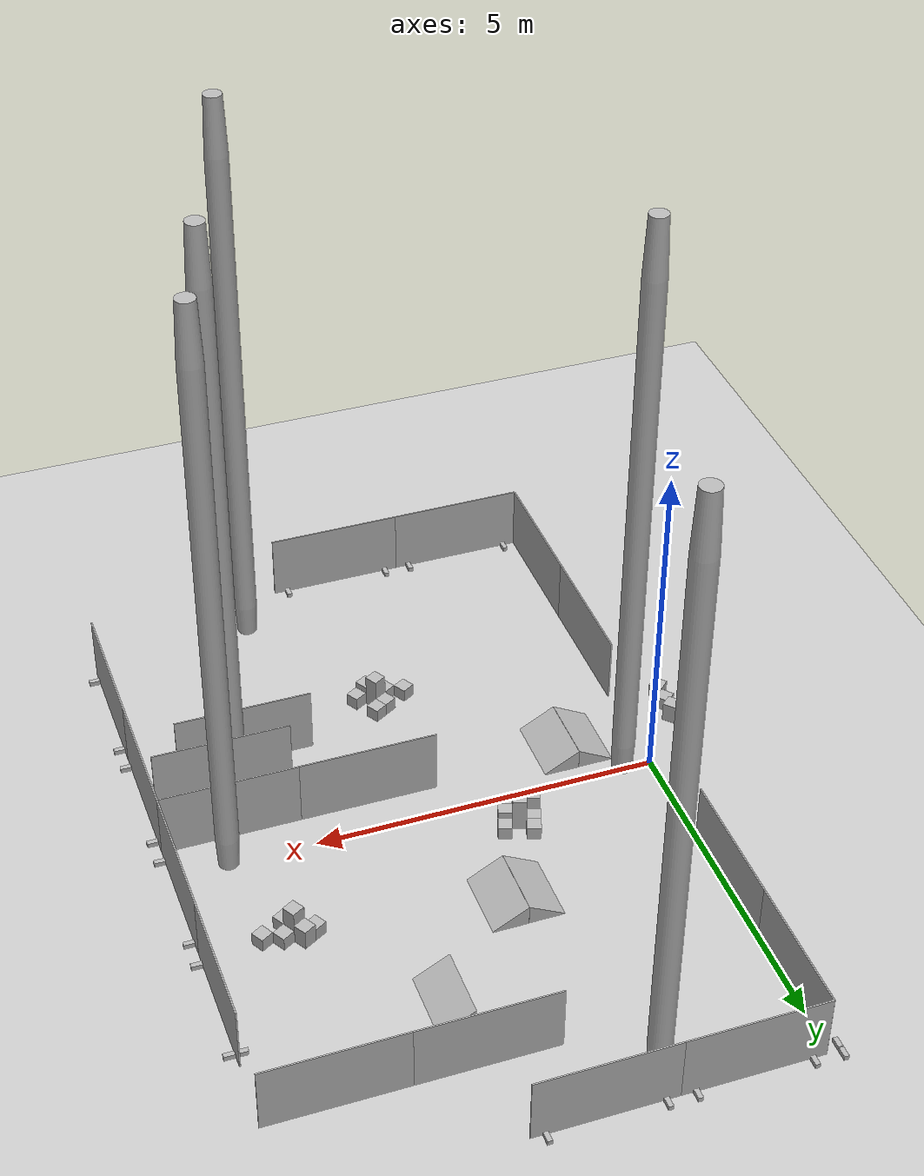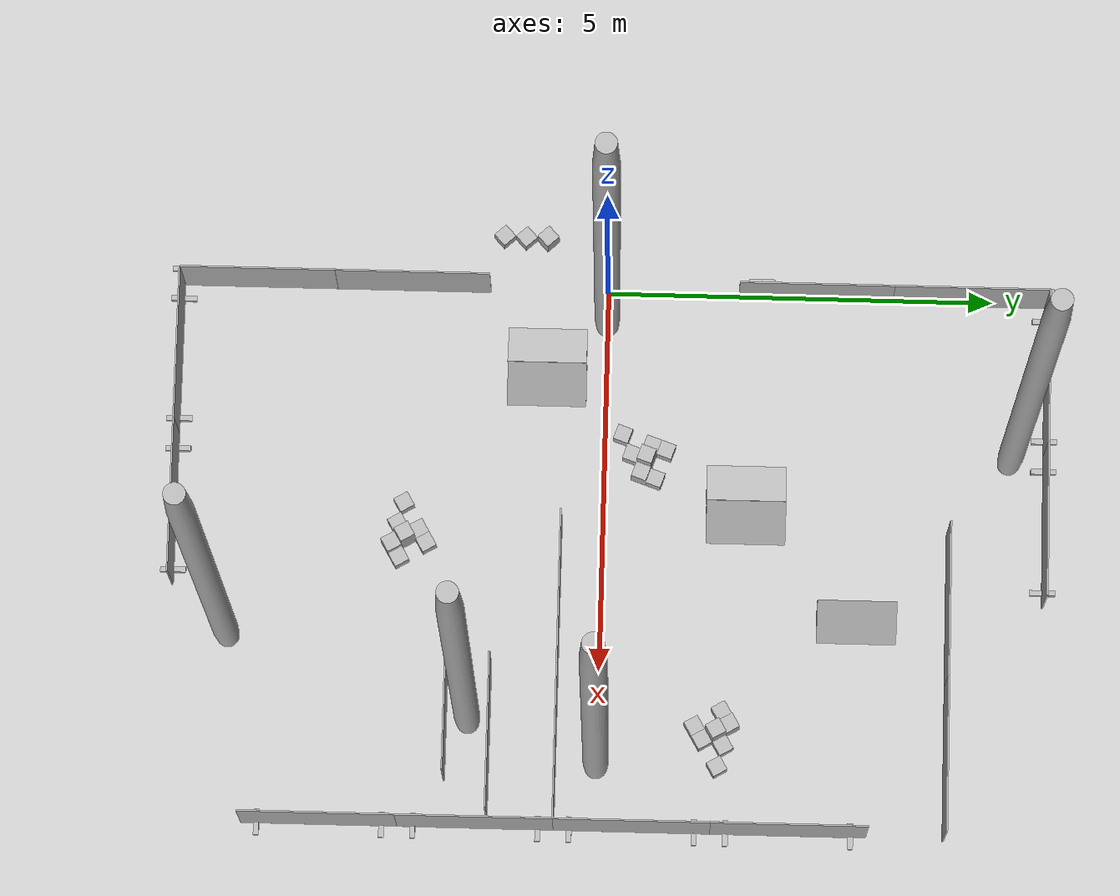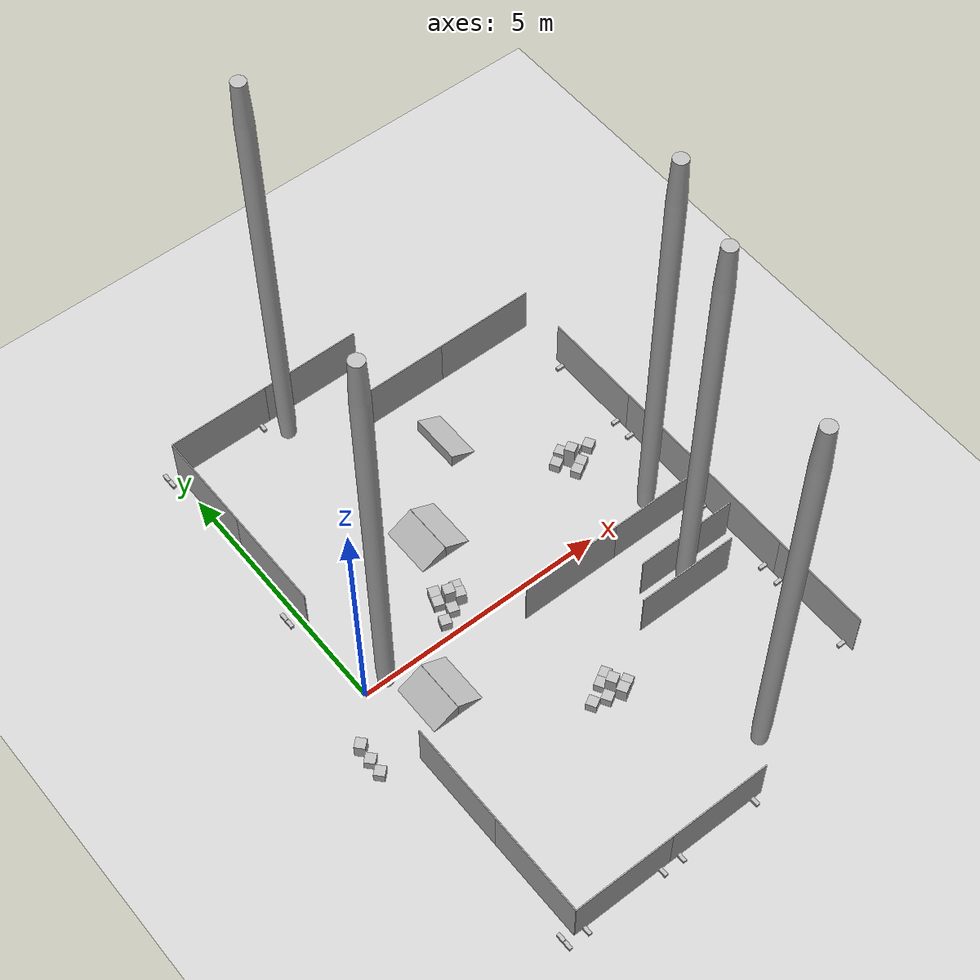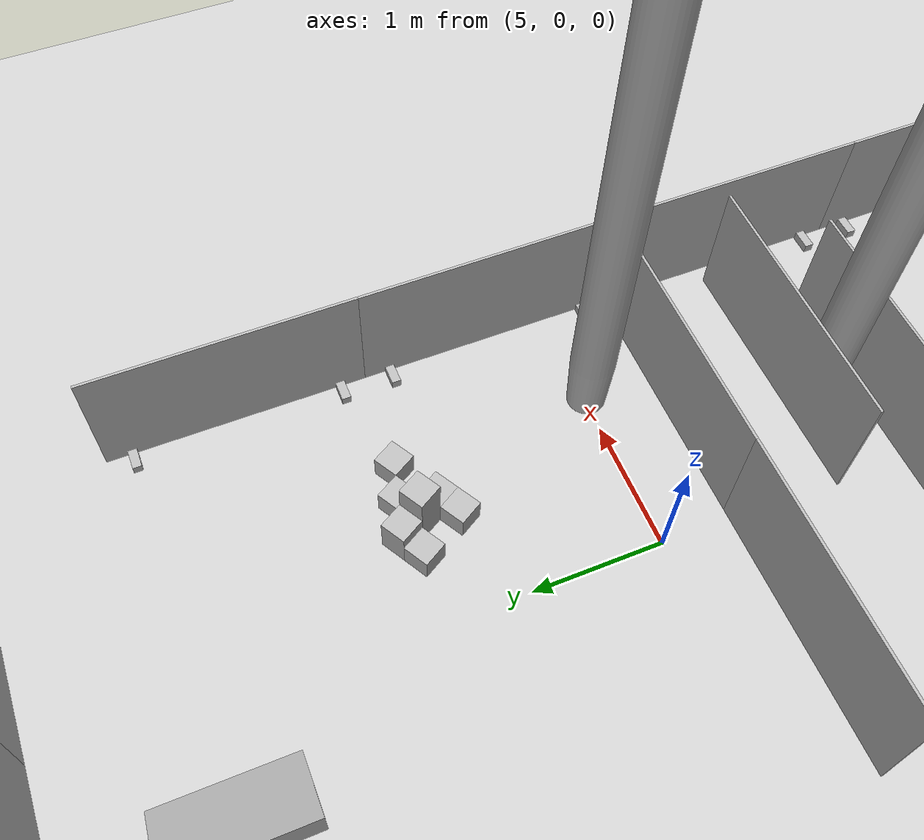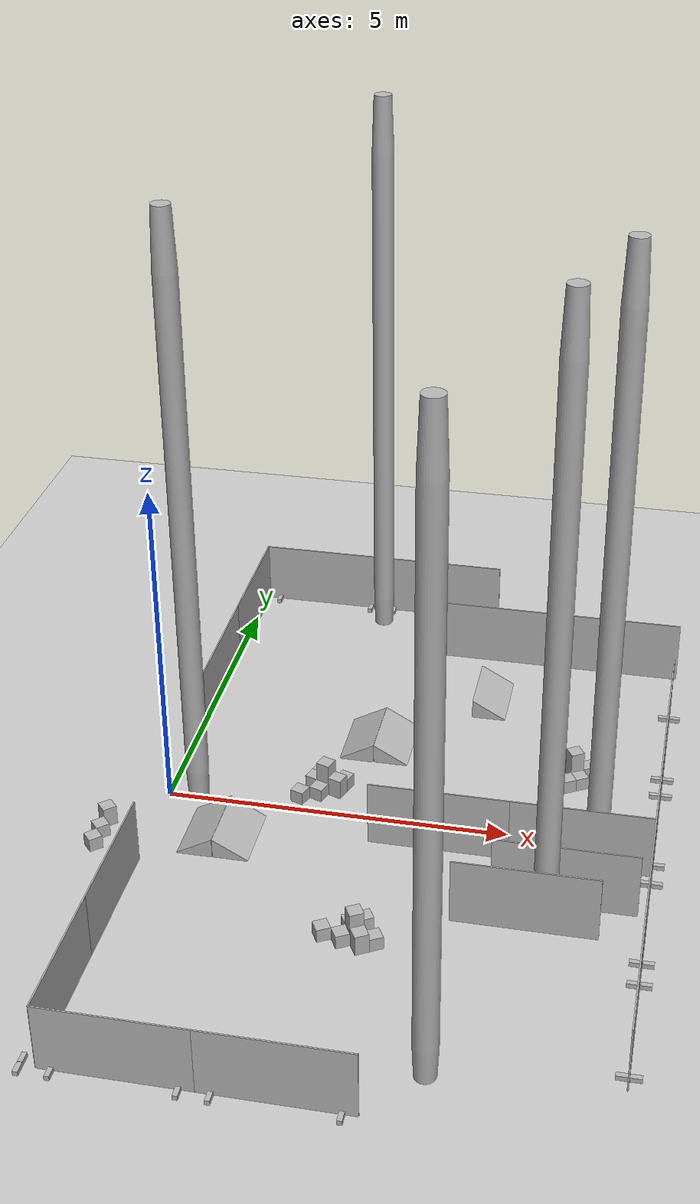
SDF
<sdf version="1.4">
 <world name="arena_HKT_11">
  <include><uri>model://ground_plane</uri></include>
  <include>
   <name>wall_stand.1071</name>
   <pose>-0.19949999451637268 2.0 0.03449999913573265  0.0 -0.0 1.570796251296997</pose>
   <uri>model://wall_stand</uri>
  </include>
  <include>
   <name>wall_stand.1072</name>
   <pose>-0.19949999451637268 2.0 0.03449999913573265  0.0 -0.0 1.570796251296997</pose>
   <uri>model://wall_stand</uri>
  </include>
  <include>
   <name>ramp.098</name>
   <pose>3.025479316711426 1.8507144451141357 0.15000000596046448  0.0 0.0 0.0</pose>
   <uri>model://ramp</uri>
  </include>
  <include>
   <name>ramp.099</name>
   <pose>2.5125322341918945 1.8457143306732178 0.15000000596046448  0.0 -0.0 3.141592502593994</pose>
   <uri>model://ramp</uri>
  </include>
  <include>
   <name>wall_2x1.488</name>
   <pose>7.071430206298828 -3.531057596206665 0.5130000114440918  0.0 -0.0 4.71238899230957</pose>
   <uri>model://wall_2x1</uri>
  </include>
  <include>
   <name>wall_2x1.489</name>
   <pose>4.071430206298828 -0.5310573577880859 0.5130000114440918  0.0 -0.0 3.141592502593994</pose>
   <uri>model://wall_2x1</uri>
  </include>
  <include>
   <name>wall_stand.1082</name>
   <pose>-0.19949999451637268 2.0 0.03449999913573265  0.0 -0.0 1.570796251296997</pose>
   <uri>model://wall_stand</uri>
  </include>
  <include>
   <name>wall_2x1.490</name>
   <pose>7.071430206298828 -1.531057596206665 0.5130000114440918  0.0 -0.0 4.71238899230957</pose>
   <uri>model://wall_2x1</uri>
  </include>
  <include>
   <name>wall_2x1.491</name>
   <pose>7.071430206298828 2.468942403793335 0.5130000114440918  0.0 -0.0 4.71238899230957</pose>
   <uri>model://wall_2x1</uri>
  </include>
  <include>
   <name>wall_2x1.492</name>
   <pose>7.071430206298828 0.46894240379333496 0.5130000114440918  0.0 -0.0 4.71238899230957</pose>
   <uri>model://wall_2x1</uri>
  </include>
  <include>
   <name>wall_2x1.493</name>
   <pose>6.071430206298828 -0.5310574769973755 0.5130000114440918  0.0 -0.0 3.141592502593994</pose>
   <uri>model://wall_2x1</uri>
  </include>
  <include>
   <name>wall_stand.1083</name>
   <pose>-0.19949999451637268 2.0 0.03449999913573265  0.0 -0.0 1.570796251296997</pose>
   <uri>model://wall_stand</uri>
  </include>
  <include>
   <name>wall_stand.1084</name>
   <pose>7.071430206298828 -4.331557273864746 0.03450000286102295  0.0 -0.0 3.141592502593994</pose>
   <uri>model://wall_stand</uri>
  </include>
  <include>
   <name>wall_stand.1085</name>
   <pose>7.071430206298828 -2.730557680130005 0.03450000286102295  0.0 -0.0 3.141592502593994</pose>
   <uri>model://wall_stand</uri>
  </include>
  <include>
   <name>wall_stand.1086</name>
   <pose>7.071430206298828 -2.3315577507019043 0.03450000286102295  0.0 -0.0 3.141592502593994</pose>
   <uri>model://wall_stand</uri>
  </include>
  <include>
   <name>wall_stand.1087</name>
   <pose>7.071430206298828 -0.7305576801300049 0.03450000286102295  0.0 -0.0 3.141592502593994</pose>
   <uri>model://wall_stand</uri>
  </include>
  <include>
   <name>wall_stand.1088</name>
   <pose>7.071430206298828 3.269442319869995 0.03450000286102295  0.0 -0.0 3.141592502593994</pose>
   <uri>model://wall_stand</uri>
  </include>
  <include>
   <name>wall_stand.1089</name>
   <pose>7.071430206298828 1.6684424877166748 0.03450000286102295  0.0 -0.0 3.141592502593994</pose>
   <uri>model://wall_stand</uri>
  </include>
  <include>
   <name>wall_stand.1090</name>
   <pose>7.071430206298828 -0.3315577507019043 0.03450000286102295  0.0 -0.0 3.141592502593994</pose>
   <uri>model://wall_stand</uri>
  </include>
  <include>
   <name>wall_stand.1091</name>
   <pose>7.071430206298828 1.2694423198699951 0.03450000286102295  0.0 -0.0 3.141592502593994</pose>
   <uri>model://wall_stand</uri>
  </include>
  <include>
   <name>wall_2x1.495</name>
   <pose>0.010646045207977295 -2.5302858352661133 0.5130000114440918  0.0 -0.0 1.570796251296997</pose>
   <uri>model://wall_2x1</uri>
  </include>
  <include>
   <name>wall_stand.1093</name>
   <pose>-0.19949999451637268 2.0 0.03449999913573265  0.0 -0.0 1.570796251296997</pose>
   <uri>model://wall_stand</uri>
  </include>
  <include>
   <name>wall_2x1.497</name>
   <pose>3.010645627975464 -5.530285835266113 0.5130000114440918  0.0 -0.0 3.141592502593994</pose>
   <uri>model://wall_2x1</uri>
  </include>
  <include>
   <name>wall_2x1.498</name>
   <pose>1.010645866394043 -5.530285835266113 0.5130000114440918  0.0 -0.0 3.141592502593994</pose>
   <uri>model://wall_2x1</uri>
  </include>
  <include>
   <name>wall_2x1.499</name>
   <pose>0.010645806789398193 -4.530285835266113 0.5130000114440918  0.0 -0.0 1.570796251296997</pose>
   <uri>model://wall_2x1</uri>
  </include>
  <include>
   <name>wall_stand.1094</name>
   <pose>-0.19949999451637268 2.0 0.03449999913573265  0.0 -0.0 1.570796251296997</pose>
   <uri>model://wall_stand</uri>
  </include>
  <include>
   <name>wall_stand.1098</name>
   <pose>-0.18885427713394165 -5.530285835266113 0.03450000286102295  0.0 -0.0 1.570796251296997</pose>
   <uri>model://wall_stand</uri>
  </include>
  <include>
   <name>wall_stand.1099</name>
   <pose>3.811145544052124 -5.530285835266113 0.03450000286102295  0.0 -0.0 1.570796251296997</pose>
   <uri>model://wall_stand</uri>
  </include>
  <include>
   <name>wall_stand.1100</name>
   <pose>2.210145950317383 -5.530285835266113 0.03450000286102295  0.0 -0.0 1.570796251296997</pose>
   <uri>model://wall_stand</uri>
  </include>
  <include>
   <name>wall_stand.1101</name>
   <pose>0.21014565229415894 -5.530285835266113 0.03450000286102295  0.0 -0.0 1.570796251296997</pose>
   <uri>model://wall_stand</uri>
  </include>
  <include>
   <name>wall_stand.1102</name>
   <pose>1.8111457824707031 -5.530285835266113 0.03450000286102295  0.0 -0.0 1.570796251296997</pose>
   <uri>model://wall_stand</uri>
  </include>
  <include>
   <name>cube_20x20.1265</name>
   <pose>2.0343916416168213 0.613365888595581 0.10000000149011612  0.0 0.0 4.376082897186279</pose>
   <uri>model://cube_20x20</uri>
  </include>
  <include>
   <name>cube_20x20.1266</name>
   <pose>2.1571874618530273 0.358569860458374 0.10000000149011612  0.0 0.0 4.376082897186279</pose>
   <uri>model://cube_20x20</uri>
  </include>
  <include>
   <name>cube_20x20.1267</name>
   <pose>1.902390956878662 0.23577475547790527 0.10000000149011612  0.0 0.0 4.376082897186279</pose>
   <uri>model://cube_20x20</uri>
  </include>
  <include>
   <name>cube_20x20.1268</name>
   <pose>2.1003925800323486 0.8021619319915771 0.10000000149011612  0.0 0.0 4.376082897186279</pose>
   <uri>model://cube_20x20</uri>
  </include>
  <include>
   <name>cube_20x20.1269</name>
   <pose>2.4779841899871826 0.6701610088348389 0.10000000149011612  0.0 0.0 4.376082897186279</pose>
   <uri>model://cube_20x20</uri>
  </include>
  <include>
   <name>cube_20x20.1270</name>
   <pose>2.0343916416168213 0.613365888595581 0.10000000149011612  0.0 0.0 4.376082897186279</pose>
   <uri>model://cube_20x20</uri>
  </include>
  <include>
   <name>cube_20x20.1271</name>
   <pose>2.1571874618530273 0.358569860458374 0.10000000149011612  0.0 0.0 4.376082897186279</pose>
   <uri>model://cube_20x20</uri>
  </include>
  <include>
   <name>cube_20x20.1272</name>
   <pose>1.902390956878662 0.23577475547790527 0.10000000149011612  0.0 0.0 4.376082897186279</pose>
   <uri>model://cube_20x20</uri>
  </include>
  <include>
   <name>cube_20x20.1273</name>
   <pose>2.1003925800323486 0.8021619319915771 0.10000000149011612  0.0 0.0 4.376082897186279</pose>
   <uri>model://cube_20x20</uri>
  </include>
  <include>
   <name>cube_20x20.1274</name>
   <pose>2.4779841899871826 0.6701610088348389 0.10000000149011612  0.0 0.0 4.376082897186279</pose>
   <uri>model://cube_20x20</uri>
  </include>
  <include>
   <name>cube_20x30.223</name>
   <pose>2.4119834899902344 0.4813649654388428 0.15000000596046448  0.0 0.0 4.376082897186279</pose>
   <uri>model://cube_20x30</uri>
  </include>
  <include>
   <name>cube_20x30.224</name>
   <pose>2.4119834899902344 0.4813649654388428 0.15000000596046448  0.0 0.0 4.376082897186279</pose>
   <uri>model://cube_20x30</uri>
  </include>
  <include>
   <name>cube_20x50.217</name>
   <pose>2.2231879234313965 0.5473649501800537 0.25  0.0 0.0 4.376082897186279</pose>
   <uri>model://cube_20x50</uri>
  </include>
  <include>
   <name>cube_20x50.218</name>
   <pose>2.2231879234313965 0.5473649501800537 0.25  0.0 0.0 4.376082897186279</pose>
   <uri>model://cube_20x50</uri>
  </include>
  <include>
   <name>ramp.101</name>
   <pose>1.2565653324127197 -0.7687876224517822 0.15000000596046448  0.0 0.0 0.0</pose>
   <uri>model://ramp</uri>
  </include>
  <include>
   <name>ramp.102</name>
   <pose>0.7436184883117676 -0.7737877368927002 0.15000000596046448  0.0 -0.0 3.141592502593994</pose>
   <uri>model://ramp</uri>
  </include>
  <include>
   <name>cube_20x20.1276</name>
   <pose>-0.6963385343551636 -1.0838134288787842 0.10000000149011612  0.0 0.0 5.4528021812438965</pose>
   <uri>model://cube_20x20</uri>
  </include>
  <include>
   <name>cube_20x20.1277</name>
   <pose>-0.709058403968811 -1.3663697242736816 0.10000000149011612  0.0 0.0 5.4528021812438965</pose>
   <uri>model://cube_20x20</uri>
  </include>
  <include>
   <name>cube_20x20.1281</name>
   <pose>-0.6963385343551636 -1.0838134288787842 0.10000000149011612  0.0 0.0 5.4528021812438965</pose>
   <uri>model://cube_20x20</uri>
  </include>
  <include>
   <name>cube_20x20.1282</name>
   <pose>-0.709058403968811 -1.3663697242736816 0.10000000149011612  0.0 0.0 5.4528021812438965</pose>
   <uri>model://cube_20x20</uri>
  </include>
  <include>
   <name>cube_20x30.225</name>
   <pose>-0.6836188435554504 -0.8012573719024658 0.15000000596046448  0.0 0.0 5.4528021812438965</pose>
   <uri>model://cube_20x30</uri>
  </include>
  <include>
   <name>cube_20x30.226</name>
   <pose>-0.6836188435554504 -0.8012573719024658 0.15000000596046448  0.0 0.0 5.4528021812438965</pose>
   <uri>model://cube_20x30</uri>
  </include>
  <include>
   <name>cube_20x20.1285</name>
   <pose>5.879853248596191 1.3422106504440308 0.10000000149011612  0.0 0.0 6.806769371032715</pose>
   <uri>model://cube_20x20</uri>
  </include>
  <include>
   <name>cube_20x20.1286</name>
   <pose>5.953062057495117 1.6154145002365112 0.10000000149011612  0.0 0.0 6.806769371032715</pose>
   <uri>model://cube_20x20</uri>
  </include>
  <include>
   <name>cube_20x20.1287</name>
   <pose>6.226265907287598 1.5422052145004272 0.10000000149011612  0.0 0.0 6.806769371032715</pose>
   <uri>model://cube_20x20</uri>
  </include>
  <include>
   <name>cube_20x20.1288</name>
   <pose>5.706645965576172 1.2422131299972534 0.10000000149011612  0.0 0.0 6.806769371032715</pose>
   <uri>model://cube_20x20</uri>
  </include>
  <include>
   <name>cube_20x20.1289</name>
   <pose>5.506651878356934 1.5886262655258179 0.10000000149011612  0.0 0.0 6.806769371032715</pose>
   <uri>model://cube_20x20</uri>
  </include>
  <include>
   <name>cube_20x20.1290</name>
   <pose>5.879853248596191 1.3422106504440308 0.10000000149011612  0.0 0.0 6.806769371032715</pose>
   <uri>model://cube_20x20</uri>
  </include>
  <include>
   <name>cube_20x20.1291</name>
   <pose>5.953062057495117 1.6154145002365112 0.10000000149011612  0.0 0.0 6.806769371032715</pose>
   <uri>model://cube_20x20</uri>
  </include>
  <include>
   <name>cube_20x20.1292</name>
   <pose>6.226265907287598 1.5422052145004272 0.10000000149011612  0.0 0.0 6.806769371032715</pose>
   <uri>model://cube_20x20</uri>
  </include>
  <include>
   <name>cube_20x20.1293</name>
   <pose>5.706645965576172 1.2422131299972534 0.10000000149011612  0.0 0.0 6.806769371032715</pose>
   <uri>model://cube_20x20</uri>
  </include>
  <include>
   <name>cube_20x20.1294</name>
   <pose>5.506651878356934 1.5886262655258179 0.10000000149011612  0.0 0.0 6.806769371032715</pose>
   <uri>model://cube_20x20</uri>
  </include>
  <include>
   <name>cube_20x30.227</name>
   <pose>5.679858207702637 1.6886237859725952 0.15000000596046448  0.0 0.0 6.806769371032715</pose>
   <uri>model://cube_20x30</uri>
  </include>
  <include>
   <name>cube_20x30.228</name>
   <pose>5.679858207702637 1.6886237859725952 0.15000000596046448  0.0 0.0 6.806769371032715</pose>
   <uri>model://cube_20x30</uri>
  </include>
  <include>
   <name>cube_20x50.221</name>
   <pose>5.779855728149414 1.515417456626892 0.25  0.0 0.0 6.806769371032715</pose>
   <uri>model://cube_20x50</uri>
  </include>
  <include>
   <name>cube_20x50.222</name>
   <pose>5.779855728149414 1.515417456626892 0.25  0.0 0.0 6.806769371032715</pose>
   <uri>model://cube_20x50</uri>
  </include>
  <include>
   <name>wall_2x1.500</name>
   <pose>3.0413644313812256 5.695001602172852 0.5130000114440918  0.0 -0.0 6.283185005187988</pose>
   <uri>model://wall_2x1</uri>
  </include>
  <include>
   <name>wall_2x1.501</name>
   <pose>0.04136395454406738 2.695002794265747 0.5130000114440918  0.0 -0.0 4.71238899230957</pose>
   <uri>model://wall_2x1</uri>
  </include>
  <include>
   <name>wall_stand.1104</name>
   <pose>-0.19949999451637268 2.0 0.03449999913573265  0.0 -0.0 1.570796251296997</pose>
   <uri>model://wall_stand</uri>
  </include>
  <include>
   <name>wall_2x1.502</name>
   <pose>1.0413646697998047 5.695002555847168 0.5130000114440918  0.0 -0.0 6.283185005187988</pose>
   <uri>model://wall_2x1</uri>
  </include>
  <include>
   <name>wall_2x1.505</name>
   <pose>0.041364431381225586 4.695002555847168 0.5130000114440918  0.0 -0.0 4.71238899230957</pose>
   <uri>model://wall_2x1</uri>
  </include>
  <include>
   <name>wall_stand.1105</name>
   <pose>-0.19949999451637268 2.0 0.03449999913573265  0.0 -0.0 1.570796251296997</pose>
   <uri>model://wall_stand</uri>
  </include>
  <include>
   <name>wall_stand.1106</name>
   <pose>3.841865062713623 5.695001602172852 0.03450000286102295  0.0 -0.0 4.71238899230957</pose>
   <uri>model://wall_stand</uri>
  </include>
  <include>
   <name>wall_stand.1107</name>
   <pose>2.2408647537231445 5.695002555847168 0.03450000286102295  0.0 -0.0 4.71238899230957</pose>
   <uri>model://wall_stand</uri>
  </include>
  <include>
   <name>wall_stand.1108</name>
   <pose>1.8418647050857544 5.695002555847168 0.03450000286102295  0.0 -0.0 4.71238899230957</pose>
   <uri>model://wall_stand</uri>
  </include>
  <include>
   <name>wall_stand.1109</name>
   <pose>0.24086451530456543 5.695002555847168 0.03450000286102295  0.0 -0.0 4.71238899230957</pose>
   <uri>model://wall_stand</uri>
  </include>
  <include>
   <name>wall_stand.1112</name>
   <pose>-0.15813517570495605 5.695002555847168 0.03450000286102295  0.0 -0.0 4.71238899230957</pose>
   <uri>model://wall_stand</uri>
  </include>
  <include>
   <name>wall_stand.1115</name>
   <pose>-0.19949999451637268 2.0 0.03449999913573265  0.0 -0.0 1.570796251296997</pose>
   <uri>model://wall_stand</uri>
  </include>
  <include>
   <name>wall_2x1.507</name>
   <pose>5.476836204528809 -1.9496707916259766 0.5130000114440918  0.0 -0.0 6.2831854820251465</pose>
   <uri>model://wall_2x1</uri>
  </include>
  <include>
   <name>wall_stand.1117</name>
   <pose>-0.19949999451637268 2.0 0.03449999913573265  0.0 -0.0 1.570796251296997</pose>
   <uri>model://wall_stand</uri>
  </include>
  <include>
   <name>wall_stand.1119</name>
   <pose>-0.19949999451637268 2.0 0.03449999913573265  0.0 -0.0 1.570796251296997</pose>
   <uri>model://wall_stand</uri>
  </include>
  <include>
   <name>wall_stand.1121</name>
   <pose>-0.19949999451637268 2.0 0.03449999913573265  0.0 -0.0 1.570796251296997</pose>
   <uri>model://wall_stand</uri>
  </include>
  <include>
   <name>wall_2x1.510</name>
   <pose>5.946268081665039 -1.389352798461914 0.5130000114440918  0.0 -0.0 9.42477798461914</pose>
   <uri>model://wall_2x1</uri>
  </include>
  <include>
   <name>wall_stand.1123</name>
   <pose>-0.19949999451637268 2.0 0.03449999913573265  0.0 -0.0 1.570796251296997</pose>
   <uri>model://wall_stand</uri>
  </include>
  <include>
   <name>wall_2x1.511</name>
   <pose>4.110227108001709 4.4550275802612305 0.5130000114440918  0.0 -0.0 9.42477798461914</pose>
   <uri>model://wall_2x1</uri>
  </include>
  <include>
   <name>wall_stand.1125</name>
   <pose>-0.19949999451637268 2.0 0.03449999913573265  0.0 -0.0 1.570796251296997</pose>
   <uri>model://wall_stand</uri>
  </include>
  <include>
   <name>wall_2x1.512</name>
   <pose>6.110227108001709 4.4550275802612305 0.5130000114440918  0.0 -0.0 9.42477798461914</pose>
   <uri>model://wall_2x1</uri>
  </include>
  <include>
   <name>wall_stand.1127</name>
   <pose>-0.19949999451637268 2.0 0.03449999913573265  0.0 -0.0 1.570796251296997</pose>
   <uri>model://wall_stand</uri>
  </include>
  <include>
   <name>cube_20x20.1295</name>
   <pose>3.2194247245788574 -2.3717634677886963 0.10000000149011612  0.0 -0.0 3.6651763916015625</pose>
   <uri>model://cube_20x20</uri>
  </include>
  <include>
   <name>cube_20x20.1296</name>
   <pose>3.1462156772613525 -2.6449673175811768 0.10000000149011612  0.0 -0.0 3.6651763916015625</pose>
   <uri>model://cube_20x20</uri>
  </include>
  <include>
   <name>cube_20x20.1297</name>
   <pose>2.873011827468872 -2.5717580318450928 0.10000000149011612  0.0 -0.0 3.6651763916015625</pose>
   <uri>model://cube_20x20</uri>
  </include>
  <include>
   <name>cube_20x20.1298</name>
   <pose>3.3926315307617188 -2.271765947341919 0.10000000149011612  0.0 -0.0 3.6651763916015625</pose>
   <uri>model://cube_20x20</uri>
  </include>
  <include>
   <name>cube_20x20.1299</name>
   <pose>3.5926260948181152 -2.6181790828704834 0.10000000149011612  0.0 -0.0 3.6651763916015625</pose>
   <uri>model://cube_20x20</uri>
  </include>
  <include>
   <name>cube_20x20.1300</name>
   <pose>3.2194247245788574 -2.3717634677886963 0.10000000149011612  0.0 -0.0 3.6651763916015625</pose>
   <uri>model://cube_20x20</uri>
  </include>
  <include>
   <name>cube_20x20.1301</name>
   <pose>3.1462156772613525 -2.6449673175811768 0.10000000149011612  0.0 -0.0 3.6651763916015625</pose>
   <uri>model://cube_20x20</uri>
  </include>
  <include>
   <name>cube_20x20.1302</name>
   <pose>2.873011827468872 -2.5717580318450928 0.10000000149011612  0.0 -0.0 3.6651763916015625</pose>
   <uri>model://cube_20x20</uri>
  </include>
  <include>
   <name>cube_20x20.1303</name>
   <pose>3.3926315307617188 -2.271765947341919 0.10000000149011612  0.0 -0.0 3.6651763916015625</pose>
   <uri>model://cube_20x20</uri>
  </include>
  <include>
   <name>cube_20x20.1304</name>
   <pose>3.5926260948181152 -2.6181790828704834 0.10000000149011612  0.0 -0.0 3.6651763916015625</pose>
   <uri>model://cube_20x20</uri>
  </include>
  <include>
   <name>cube_20x30.229</name>
   <pose>3.419419288635254 -2.7181766033172607 0.15000000596046448  0.0 -0.0 3.6651763916015625</pose>
   <uri>model://cube_20x30</uri>
  </include>
  <include>
   <name>cube_20x30.230</name>
   <pose>3.419419288635254 -2.7181766033172607 0.15000000596046448  0.0 -0.0 3.6651763916015625</pose>
   <uri>model://cube_20x30</uri>
  </include>
  <include>
   <name>cube_20x50.223</name>
   <pose>3.3194220066070557 -2.5449702739715576 0.25  0.0 -0.0 3.6651763916015625</pose>
   <uri>model://cube_20x50</uri>
  </include>
  <include>
   <name>cube_20x50.224</name>
   <pose>3.3194220066070557 -2.5449702739715576 0.25  0.0 -0.0 3.6651763916015625</pose>
   <uri>model://cube_20x50</uri>
  </include>
  <include>
   <name>ramp.106</name>
   <pose>4.30116605758667 3.3036534786224365 0.15000000596046448  0.0 -0.0 6.283185005187988</pose>
   <uri>model://ramp</uri>
  </include>
  <include>
   <name>barrel_110l.082</name>
   <pose>2.1513140201568604 5.237995624542236 0.0  0.0 0.0 0.0</pose>
   <uri>model://barrel_110l</uri>
  </include>
  <include>
   <name>barrel_110l.083</name>
   <pose>5.719576835632324 -1.6607954502105713 0.0  0.0 0.0 0.0</pose>
   <uri>model://barrel_110l</uri>
  </include>
  <include>
   <name>barrel_110l.084</name>
   <pose>4.665648460388184 -4.783429145812988 0.0  0.0 0.0 0.0</pose>
   <uri>model://barrel_110l</uri>
  </include>
  <include>
   <name>barrel_110l.085</name>
   <pose>6.263016223907471 -0.004051387310028076 0.0  0.0 0.0 0.0</pose>
   <uri>model://barrel_110l</uri>
  </include>
  <include>
   <name>barrel_110l.086</name>
   <pose>0.43812131881713867 -0.004051387310028076 0.0  0.0 0.0 0.0</pose>
   <uri>model://barrel_110l</uri>
  </include>
 </world>
</sdf>
